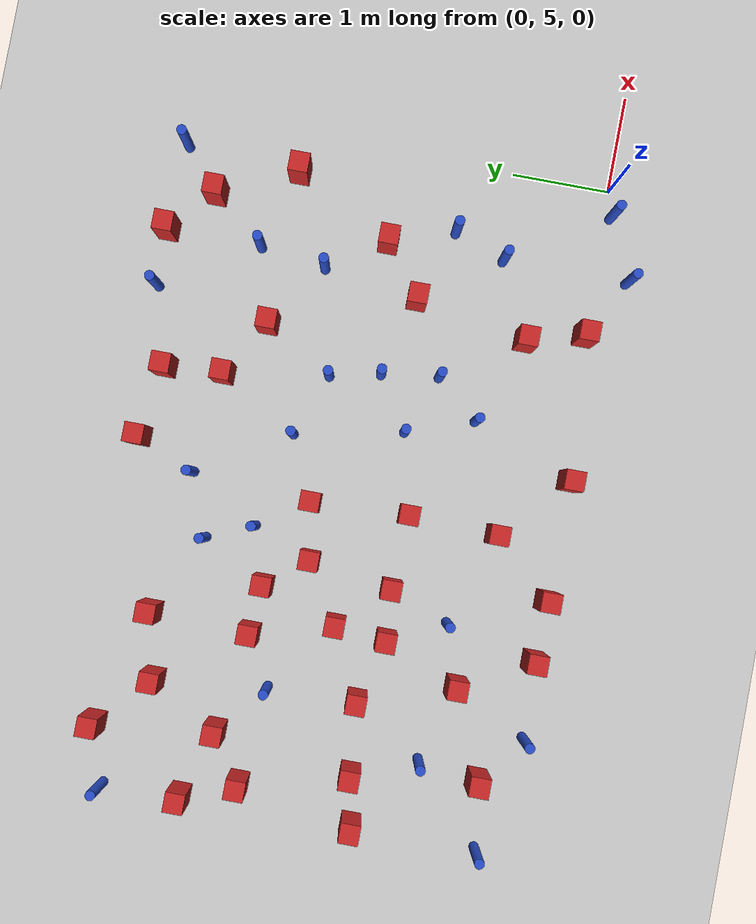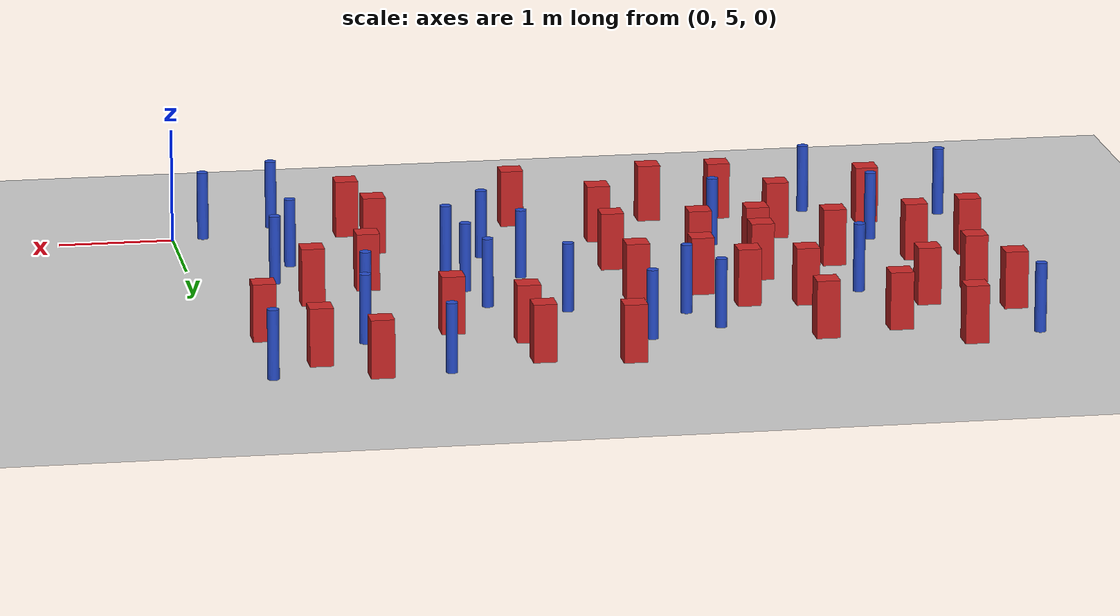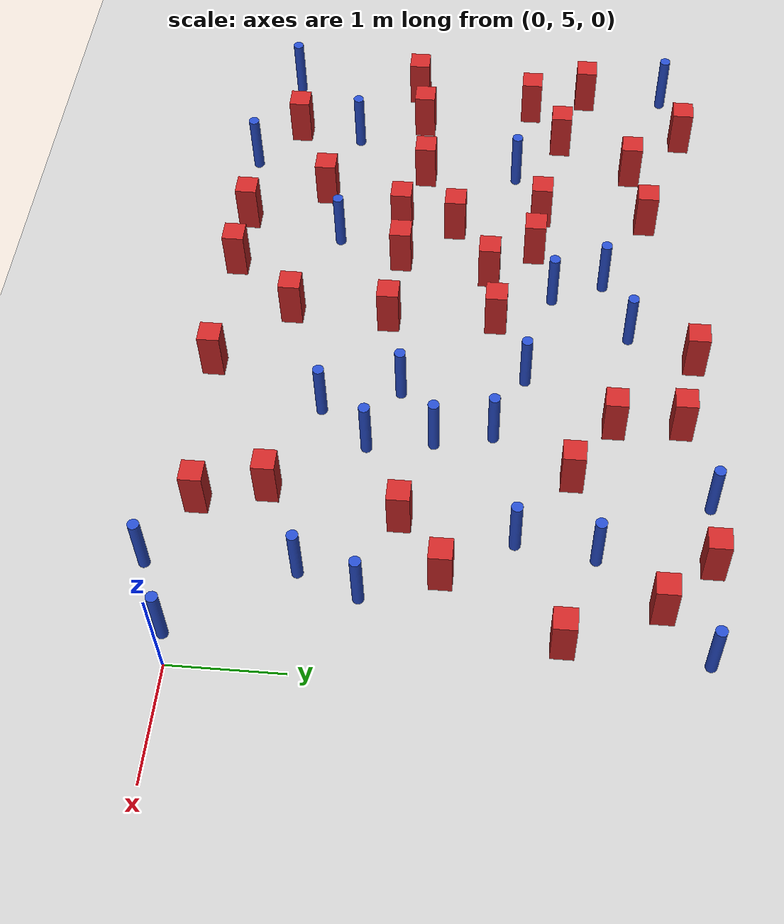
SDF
<sdf version="1.6">
 <world name="default">
  <model name="ground_plane">
   <static>1</static>
   <link name="link">
    <collision name="collision">
     <geometry><plane><normal>0 0 1</normal><size>100 100</size></plane></geometry>
     <surface><friction><ode><mu>100</mu><mu2>50</mu2></ode></friction></surface>
    </collision>
    <visual name="visual">
     <cast_shadows>0</cast_shadows>
     <geometry><plane><normal>0 0 1</normal><size>100 100</size></plane></geometry>
     <material>
      <ambient>1.0 1.0 1.0 1.0</ambient>
      <diffuse>0.8 0.8 0.8 1.0</diffuse>
      <specular>0.01 0.01 0.01 1.000000</specular>
     </material>
    </visual>
   </link>
  </model>
  <model name="square_post_obstacle7">
   <static>true</static>
   <pose>-1.22613645058 9.38384493401 8.22691968438e-08 7.22125133819e-06 -7.54495500217e-07 2.29674213826e-05</pose>
   <link name="link">
    <pose>0 0 0.25 0 -0 0</pose>
    <inertial>
     <mass>100</mass>
     <inertia>
      <ixx>0.166667</ixx>
      <ixy>0</ixy>
      <ixz>0</ixz>
      <iyy>0.166667</iyy>
      <iyz>0</iyz>
      <izz>0.166667</izz>
     </inertia>
    </inertial>
    <collision name="collision"><geometry><box><size>.2 .2 .5</size></box></geometry></collision>
    <visual name="visual">
     <geometry><box><size>.2 .2 .5</size></box></geometry>
     <material>
      <script><name>Gazebo/Red</name><uri>file://media/materials/scripts/gazebo.material</uri></script>
     </material>
    </visual>
   </link>
  </model>
  <model name="square_post_obstacle14">
   <static>true</static>
   <pose>-4.28531719033 7.33323950146 8.22691968438e-08 7.2212513382e-06 -7.54495500217e-07 2.29674213826e-05</pose>
   <link name="link">
    <pose>0 0 0.25 0 -0 0</pose>
    <inertial>
     <mass>100</mass>
     <inertia>
      <ixx>0.166667</ixx>
      <ixy>0</ixy>
      <ixz>0</ixz>
      <iyy>0.166667</iyy>
      <iyz>0</iyz>
      <izz>0.166667</izz>
     </inertia>
    </inertial>
    <collision name="collision"><geometry><box><size>.2 .2 .5</size></box></geometry></collision>
    <visual name="visual">
     <geometry><box><size>.2 .2 .5</size></box></geometry>
     <material>
      <script><name>Gazebo/Red</name><uri>file://media/materials/scripts/gazebo.material</uri></script>
     </material>
    </visual>
   </link>
  </model>
  <model name="square_post_obstacle18">
   <static>true</static>
   <pose>-5.58500520957 6.61513116122 8.22691968438e-08 7.22125133819e-06 -7.54495500217e-07 2.29674213826e-05</pose>
   <link name="link">
    <pose>0 0 0.25 0 -0 0</pose>
    <inertial>
     <mass>100</mass>
     <inertia>
      <ixx>0.166667</ixx>
      <ixy>0</ixy>
      <ixz>0</ixz>
      <iyy>0.166667</iyy>
      <iyz>0</iyz>
      <izz>0.166667</izz>
     </inertia>
    </inertial>
    <collision name="collision"><geometry><box><size>.2 .2 .5</size></box></geometry></collision>
    <visual name="visual">
     <geometry><box><size>.2 .2 .5</size></box></geometry>
     <material>
      <script><name>Gazebo/Red</name><uri>file://media/materials/scripts/gazebo.material</uri></script>
     </material>
    </visual>
   </link>
  </model>
  <model name="pole_obstacle14">
   <static>true</static>
   <pose>-2.29876144259 6.96857675755 2.88873142074e-08 -9.90536689859e-09 4.60219948989e-07 -1.20965994961e-07</pose>
   <link name="link">
    <pose>0 0 0.3 0 -0 0</pose>
    <inertial>
     <mass>1</mass>
     <inertia><ixx>0.145833</ixx><ixy>0</ixy><ixz>0</ixz><iyy>0.145833</iyy><iyz>0</iyz><izz>0.125</izz></inertia>
    </inertial>
    <collision name="collision">
     <geometry><cylinder><radius>0.05</radius><length>.6</length></cylinder></geometry>
    </collision>
    <visual name="visual">
     <geometry><cylinder><radius>0.05</radius><length>.6</length></cylinder></geometry>
     <material>
      <script><name>Gazebo/Blue</name><uri>file://media/materials/scripts/gazebo.material</uri></script>
     </material>
    </visual>
   </link>
  </model>
  <model name="square_post_obstacle28">
   <static>true</static>
   <pose>-0.948833752845 7.14152866537 8.22691968438e-08 7.22125133819e-06 -7.54495500217e-07 2.29674213826e-05</pose>
   <link name="link">
    <pose>0 0 0.25 0 -0 0</pose>
    <inertial>
     <mass>100</mass>
     <inertia>
      <ixx>0.166667</ixx>
      <ixy>0</ixy>
      <ixz>0</ixz>
      <iyy>0.166667</iyy>
      <iyz>0</iyz>
      <izz>0.166667</izz>
     </inertia>
    </inertial>
    <collision name="collision"><geometry><box><size>.2 .2 .5</size></box></geometry></collision>
    <visual name="visual">
     <geometry><box><size>.2 .2 .5</size></box></geometry>
     <material>
      <script><name>Gazebo/Red</name><uri>file://media/materials/scripts/gazebo.material</uri></script>
     </material>
    </visual>
   </link>
  </model>
  <model name="square_post_obstacle33">
   <static>true</static>
   <pose>-3.69137346641 5.52263100463 8.22691968438e-08 7.2212513382e-06 -7.54495500217e-07 2.29674213826e-05</pose>
   <link name="link">
    <pose>0 0 0.25 0 -0 0</pose>
    <inertial>
     <mass>100</mass>
     <inertia>
      <ixx>0.166667</ixx>
      <ixy>0</ixy>
      <ixz>0</ixz>
      <iyy>0.166667</iyy>
      <iyz>0</iyz>
      <izz>0.166667</izz>
     </inertia>
    </inertial>
    <collision name="collision"><geometry><box><size>.2 .2 .5</size></box></geometry></collision>
    <visual name="visual">
     <geometry><box><size>.2 .2 .5</size></box></geometry>
     <material>
      <script><name>Gazebo/Red</name><uri>file://media/materials/scripts/gazebo.material</uri></script>
     </material>
    </visual>
   </link>
  </model>
  <model name="square_post_obstacle37">
   <static>true</static>
   <pose>-5.26482047523 5.65616840763 8.22691968438e-08 7.22125133819e-06 -7.54495500217e-07 2.29674213826e-05</pose>
   <link name="link">
    <pose>0 0 0.25 0 -0 0</pose>
    <inertial>
     <mass>100</mass>
     <inertia>
      <ixx>0.166667</ixx>
      <ixy>0</ixy>
      <ixz>0</ixz>
      <iyy>0.166667</iyy>
      <iyz>0</iyz>
      <izz>0.166667</izz>
     </inertia>
    </inertial>
    <collision name="collision"><geometry><box><size>.2 .2 .5</size></box></geometry></collision>
    <visual name="visual">
     <geometry><box><size>.2 .2 .5</size></box></geometry>
     <material>
      <script><name>Gazebo/Red</name><uri>file://media/materials/scripts/gazebo.material</uri></script>
     </material>
    </visual>
   </link>
  </model>
  <model name="square_post_obstacle38">
   <static>true</static>
   <pose>-1.47556987139 6.74915385455 8.22691968438e-08 7.2212513382e-06 -7.54495500217e-07 2.29674213826e-05</pose>
   <link name="link">
    <pose>0 0 0.25 0 -0 0</pose>
    <inertial>
     <mass>100</mass>
     <inertia>
      <ixx>0.166667</ixx>
      <ixy>0</ixy>
      <ixz>0</ixz>
      <iyy>0.166667</iyy>
      <iyz>0</iyz>
      <izz>0.166667</izz>
     </inertia>
    </inertial>
    <collision name="collision"><geometry><box><size>.2 .2 .5</size></box></geometry></collision>
    <visual name="visual">
     <geometry><box><size>.2 .2 .5</size></box></geometry>
     <material>
      <script><name>Gazebo/Red</name><uri>file://media/materials/scripts/gazebo.material</uri></script>
     </material>
    </visual>
   </link>
  </model>
  <model name="pole_obstacle43">
   <static>true</static>
   <pose>-6.88570336969 8.98308376058 2.88873142074e-08 -9.9053668967e-09 4.60219948993e-07 -1.20965994957e-07</pose>
   <link name="link">
    <pose>0 0 0.3 0 -0 0</pose>
    <inertial>
     <mass>1</mass>
     <inertia><ixx>0.145833</ixx><ixy>0</ixy><ixz>0</ixz><iyy>0.145833</iyy><iyz>0</iyz><izz>0.125</izz></inertia>
    </inertial>
    <collision name="collision">
     <geometry><cylinder><radius>0.05</radius><length>.6</length></cylinder></geometry>
    </collision>
    <visual name="visual">
     <geometry><cylinder><radius>0.05</radius><length>.6</length></cylinder></geometry>
     <material>
      <script><name>Gazebo/Blue</name><uri>file://media/materials/scripts/gazebo.material</uri></script>
     </material>
    </visual>
   </link>
  </model>
  <model name="square_post_obstacle42">
   <static>true</static>
   <pose>-3.70595716237 7.43090711601 8.22691968438e-08 7.2212513382e-06 -7.54495500217e-07 2.29674213826e-05</pose>
   <link name="link">
    <pose>0 0 0.25 0 -0 0</pose>
    <inertial>
     <mass>100</mass>
     <inertia>
      <ixx>0.166667</ixx>
      <ixy>0</ixy>
      <ixz>0</ixz>
      <iyy>0.166667</iyy>
      <iyz>0</iyz>
      <izz>0.166667</izz>
     </inertia>
    </inertial>
    <collision name="collision"><geometry><box><size>.2 .2 .5</size></box></geometry></collision>
    <visual name="visual">
     <geometry><box><size>.2 .2 .5</size></box></geometry>
     <material>
      <script><name>Gazebo/Red</name><uri>file://media/materials/scripts/gazebo.material</uri></script>
     </material>
    </visual>
   </link>
  </model>
  <model name="square_post_obstacle44">
   <static>true</static>
   <pose>-4.87948430223 6.96443715144 8.22691968438e-08 7.2212513382e-06 -7.54495500217e-07 2.29674213826e-05</pose>
   <link name="link">
    <pose>0 0 0.25 0 -0 0</pose>
    <inertial>
     <mass>100</mass>
     <inertia>
      <ixx>0.166667</ixx>
      <ixy>0</ixy>
      <ixz>0</ixz>
      <iyy>0.166667</iyy>
      <iyz>0</iyz>
      <izz>0.166667</izz>
     </inertia>
    </inertial>
    <collision name="collision"><geometry><box><size>.2 .2 .5</size></box></geometry></collision>
    <visual name="visual">
     <geometry><box><size>.2 .2 .5</size></box></geometry>
     <material>
      <script><name>Gazebo/Red</name><uri>file://media/materials/scripts/gazebo.material</uri></script>
     </material>
    </visual>
   </link>
  </model>
  <model name="pole_obstacle52">
   <static>true</static>
   <pose>-1.32729031812 7.73289662675 2.88873142074e-08 -9.90536689852e-09 4.60219948989e-07 -1.2096599496e-07</pose>
   <link name="link">
    <pose>0 0 0.3 0 -0 0</pose>
    <inertial>
     <mass>1</mass>
     <inertia><ixx>0.145833</ixx><ixy>0</ixy><ixz>0</ixz><iyy>0.145833</iyy><iyz>0</iyz><izz>0.125</izz></inertia>
    </inertial>
    <collision name="collision">
     <geometry><cylinder><radius>0.05</radius><length>.6</length></cylinder></geometry>
    </collision>
    <visual name="visual">
     <geometry><cylinder><radius>0.05</radius><length>.6</length></cylinder></geometry>
     <material>
      <script><name>Gazebo/Blue</name><uri>file://media/materials/scripts/gazebo.material</uri></script>
     </material>
    </visual>
   </link>
  </model>
  <model name="pole_obstacle62">
   <static>true</static>
   <pose>-2.41062596657 7.48643490611 2.88873142074e-08 -9.90536689859e-09 4.60219948989e-07 -1.20965994961e-07</pose>
   <link name="link">
    <pose>0 0 0.3 0 -0 0</pose>
    <inertial>
     <mass>1</mass>
     <inertia><ixx>0.145833</ixx><ixy>0</ixy><ixz>0</ixz><iyy>0.145833</iyy><iyz>0</iyz><izz>0.125</izz></inertia>
    </inertial>
    <collision name="collision">
     <geometry><cylinder><radius>0.05</radius><length>.6</length></cylinder></geometry>
    </collision>
    <visual name="visual">
     <geometry><cylinder><radius>0.05</radius><length>.6</length></cylinder></geometry>
     <material>
      <script><name>Gazebo/Blue</name><uri>file://media/materials/scripts/gazebo.material</uri></script>
     </material>
    </visual>
   </link>
  </model>
  <model name="pole_obstacle66">
   <static>true</static>
   <pose>-0.915262878903 5.9514463079 2.88873142074e-08 -9.90536689661e-09 4.60219948993e-07 -1.20965994957e-07</pose>
   <link name="link">
    <pose>0 0 0.3 0 -0 0</pose>
    <inertial>
     <mass>1</mass>
     <inertia><ixx>0.145833</ixx><ixy>0</ixy><ixz>0</ixz><iyy>0.145833</iyy><iyz>0</iyz><izz>0.125</izz></inertia>
    </inertial>
    <collision name="collision">
     <geometry><cylinder><radius>0.05</radius><length>.6</length></cylinder></geometry>
    </collision>
    <visual name="visual">
     <geometry><cylinder><radius>0.05</radius><length>.6</length></cylinder></geometry>
     <material>
      <script><name>Gazebo/Blue</name><uri>file://media/materials/scripts/gazebo.material</uri></script>
     </material>
    </visual>
   </link>
  </model>
  <model name="square_post_obstacle74">
   <static>true</static>
   <pose>-1.53128782521 5.00618645903 8.22691968438e-08 7.2212513382e-06 -7.54495500217e-07 2.29674213826e-05</pose>
   <link name="link">
    <pose>0 0 0.25 0 -0 0</pose>
    <inertial>
     <mass>100</mass>
     <inertia>
      <ixx>0.166667</ixx>
      <ixy>0</ixy>
      <ixz>0</ixz>
      <iyy>0.166667</iyy>
      <iyz>0</iyz>
      <izz>0.166667</izz>
     </inertia>
    </inertial>
    <collision name="collision"><geometry><box><size>.2 .2 .5</size></box></geometry></collision>
    <visual name="visual">
     <geometry><box><size>.2 .2 .5</size></box></geometry>
     <material>
      <script><name>Gazebo/Red</name><uri>file://media/materials/scripts/gazebo.material</uri></script>
     </material>
    </visual>
   </link>
  </model>
  <model name="pole_obstacle70">
   <static>true</static>
   <pose>-3.62546005484 8.66978898283 2.88873142074e-08 -9.90536692318e-09 4.6021994893e-07 -1.20965994988e-07</pose>
   <link name="link">
    <pose>0 0 0.3 0 -0 0</pose>
    <inertial>
     <mass>1</mass>
     <inertia><ixx>0.145833</ixx><ixy>0</ixy><ixz>0</ixz><iyy>0.145833</iyy><iyz>0</iyz><izz>0.125</izz></inertia>
    </inertial>
    <collision name="collision">
     <geometry><cylinder><radius>0.05</radius><length>.6</length></cylinder></geometry>
    </collision>
    <visual name="visual">
     <geometry><cylinder><radius>0.05</radius><length>.6</length></cylinder></geometry>
     <material>
      <script><name>Gazebo/Blue</name><uri>file://media/materials/scripts/gazebo.material</uri></script>
     </material>
    </visual>
   </link>
  </model>
  <model name="pole_obstacle75">
   <static>true</static>
   <pose>-2.83647481616 6.62728271968 2.88873142074e-08 -9.90536689859e-09 4.60219948989e-07 -1.20965994961e-07</pose>
   <link name="link">
    <pose>0 0 0.3 0 -0 0</pose>
    <inertial>
     <mass>1</mass>
     <inertia><ixx>0.145833</ixx><ixy>0</ixy><ixz>0</ixz><iyy>0.145833</iyy><iyz>0</iyz><izz>0.125</izz></inertia>
    </inertial>
    <collision name="collision">
     <geometry><cylinder><radius>0.05</radius><length>.6</length></cylinder></geometry>
    </collision>
    <visual name="visual">
     <geometry><cylinder><radius>0.05</radius><length>.6</length></cylinder></geometry>
     <material>
      <script><name>Gazebo/Blue</name><uri>file://media/materials/scripts/gazebo.material</uri></script>
     </material>
    </visual>
   </link>
  </model>
  <model name="square_post_obstacle78">
   <static>true</static>
   <pose>-4.25171875702 4.90870823354 8.22691968438e-08 7.2212513382e-06 -7.54495500217e-07 2.29674213826e-05</pose>
   <link name="link">
    <pose>0 0 0.25 0 -0 0</pose>
    <inertial>
     <mass>100</mass>
     <inertia>
      <ixx>0.166667</ixx>
      <ixy>0</ixy>
      <ixz>0</ixz>
      <iyy>0.166667</iyy>
      <iyz>0</iyz>
      <izz>0.166667</izz>
     </inertia>
    </inertial>
    <collision name="collision"><geometry><box><size>.2 .2 .5</size></box></geometry></collision>
    <visual name="visual">
     <geometry><box><size>.2 .2 .5</size></box></geometry>
     <material>
      <script><name>Gazebo/Red</name><uri>file://media/materials/scripts/gazebo.material</uri></script>
     </material>
    </visual>
   </link>
  </model>
  <model name="square_post_obstacle79">
   <static>true</static>
   <pose>-6.14588084051 5.27867057476 8.22691968438e-08 7.22125133819e-06 -7.54495500217e-07 2.29674213826e-05</pose>
   <link name="link">
    <pose>0 0 0.25 0 -0 0</pose>
    <inertial>
     <mass>100</mass>
     <inertia>
      <ixx>0.166667</ixx>
      <ixy>0</ixy>
      <ixz>0</ixz>
      <iyy>0.166667</iyy>
      <iyz>0</iyz>
      <izz>0.166667</izz>
     </inertia>
    </inertial>
    <collision name="collision"><geometry><box><size>.2 .2 .5</size></box></geometry></collision>
    <visual name="visual">
     <geometry><box><size>.2 .2 .5</size></box></geometry>
     <material>
      <script><name>Gazebo/Red</name><uri>file://media/materials/scripts/gazebo.material</uri></script>
     </material>
    </visual>
   </link>
  </model>
  <model name="square_post_obstacle80">
   <static>true</static>
   <pose>-1.6926013516 5.59172345195 8.22691968438e-08 7.2212513382e-06 -7.54495500217e-07 2.29674213826e-05</pose>
   <link name="link">
    <pose>0 0 0.25 0 -0 0</pose>
    <inertial>
     <mass>100</mass>
     <inertia>
      <ixx>0.166667</ixx>
      <ixy>0</ixy>
      <ixz>0</ixz>
      <iyy>0.166667</iyy>
      <iyz>0</iyz>
      <izz>0.166667</izz>
     </inertia>
    </inertial>
    <collision name="collision"><geometry><box><size>.2 .2 .5</size></box></geometry></collision>
    <visual name="visual">
     <geometry><box><size>.2 .2 .5</size></box></geometry>
     <material>
      <script><name>Gazebo/Red</name><uri>file://media/materials/scripts/gazebo.material</uri></script>
     </material>
    </visual>
   </link>
  </model>
  <model name="square_post_obstacle81">
   <static>true</static>
   <pose>-4.61421129042 7.75122520981 8.22691968438e-08 7.2212513382e-06 -7.54495500217e-07 2.29674213826e-05</pose>
   <link name="link">
    <pose>0 0 0.25 0 -0 0</pose>
    <inertial>
     <mass>100</mass>
     <inertia>
      <ixx>0.166667</ixx>
      <ixy>0</ixy>
      <ixz>0</ixz>
      <iyy>0.166667</iyy>
      <iyz>0</iyz>
      <izz>0.166667</izz>
     </inertia>
    </inertial>
    <collision name="collision"><geometry><box><size>.2 .2 .5</size></box></geometry></collision>
    <visual name="visual">
     <geometry><box><size>.2 .2 .5</size></box></geometry>
     <material>
      <script><name>Gazebo/Red</name><uri>file://media/materials/scripts/gazebo.material</uri></script>
     </material>
    </visual>
   </link>
  </model>
  <model name="pole_obstacle91">
   <static>true</static>
   <pose>-4.04873072896 7.94515494292 2.88873142074e-08 -9.90536691069e-09 4.6021994896e-07 -1.20965994979e-07</pose>
   <link name="link">
    <pose>0 0 0.3 0 -0 0</pose>
    <inertial>
     <mass>1</mass>
     <inertia><ixx>0.145833</ixx><ixy>0</ixy><ixz>0</ixz><iyy>0.145833</iyy><iyz>0</iyz><izz>0.125</izz></inertia>
    </inertial>
    <collision name="collision">
     <geometry><cylinder><radius>0.05</radius><length>.6</length></cylinder></geometry>
    </collision>
    <visual name="visual">
     <geometry><cylinder><radius>0.05</radius><length>.6</length></cylinder></geometry>
     <material>
      <script><name>Gazebo/Blue</name><uri>file://media/materials/scripts/gazebo.material</uri></script>
     </material>
    </visual>
   </link>
  </model>
  <model name="square_post_obstacle88">
   <static>true</static>
   <pose>-5.74382862756 8.66205579958 8.22691968438e-08 7.22125133819e-06 -7.54495500217e-07 2.29674213826e-05</pose>
   <link name="link">
    <pose>0 0 0.25 0 -0 0</pose>
    <inertial>
     <mass>100</mass>
     <inertia>
      <ixx>0.166667</ixx>
      <ixy>0</ixy>
      <ixz>0</ixz>
      <iyy>0.166667</iyy>
      <iyz>0</iyz>
      <izz>0.166667</izz>
     </inertia>
    </inertial>
    <collision name="collision"><geometry><box><size>.2 .2 .5</size></box></geometry></collision>
    <visual name="visual">
     <geometry><box><size>.2 .2 .5</size></box></geometry>
     <material>
      <script><name>Gazebo/Red</name><uri>file://media/materials/scripts/gazebo.material</uri></script>
     </material>
    </visual>
   </link>
  </model>
  <model name="pole_obstacle101">
   <static>true</static>
   <pose>-4.25760830377 8.41995692485 2.88873142074e-08 -9.9053668967e-09 4.60219948993e-07 -1.20965994957e-07</pose>
   <link name="link">
    <pose>0 0 0.3 0 -0 0</pose>
    <inertial>
     <mass>1</mass>
     <inertia><ixx>0.145833</ixx><ixy>0</ixy><ixz>0</ixz><iyy>0.145833</iyy><iyz>0</iyz><izz>0.125</izz></inertia>
    </inertial>
    <collision name="collision">
     <geometry><cylinder><radius>0.05</radius><length>.6</length></cylinder></geometry>
    </collision>
    <visual name="visual">
     <geometry><cylinder><radius>0.05</radius><length>.6</length></cylinder></geometry>
     <material>
      <script><name>Gazebo/Blue</name><uri>file://media/materials/scripts/gazebo.material</uri></script>
     </material>
    </visual>
   </link>
  </model>
  <model name="square_post_obstacle91">
   <static>true</static>
   <pose>-3.36120687217 9.26845364239 8.22691968438e-08 7.2212513382e-06 -7.54495500217e-07 2.29674213826e-05</pose>
   <link name="link">
    <pose>0 0 0.25 0 -0 0</pose>
    <inertial>
     <mass>100</mass>
     <inertia>
      <ixx>0.166667</ixx>
      <ixy>0</ixy>
      <ixz>0</ixz>
      <iyy>0.166667</iyy>
      <iyz>0</iyz>
      <izz>0.166667</izz>
     </inertia>
    </inertial>
    <collision name="collision"><geometry><box><size>.2 .2 .5</size></box></geometry></collision>
    <visual name="visual">
     <geometry><box><size>.2 .2 .5</size></box></geometry>
     <material>
      <script><name>Gazebo/Red</name><uri>file://media/materials/scripts/gazebo.material</uri></script>
     </material>
    </visual>
   </link>
  </model>
  <model name="pole_obstacle105">
   <static>true</static>
   <pose>-3.06179852335 7.73640630714 2.88873142074e-08 -9.90536689859e-09 4.60219948989e-07 -1.20965994961e-07</pose>
   <link name="link">
    <pose>0 0 0.3 0 -0 0</pose>
    <inertial>
     <mass>1</mass>
     <inertia><ixx>0.145833</ixx><ixy>0</ixy><ixz>0</ixz><iyy>0.145833</iyy><iyz>0</iyz><izz>0.125</izz></inertia>
    </inertial>
    <collision name="collision">
     <geometry><cylinder><radius>0.05</radius><length>.6</length></cylinder></geometry>
    </collision>
    <visual name="visual">
     <geometry><cylinder><radius>0.05</radius><length>.6</length></cylinder></geometry>
     <material>
      <script><name>Gazebo/Blue</name><uri>file://media/materials/scripts/gazebo.material</uri></script>
     </material>
    </visual>
   </link>
  </model>
  <model name="square_post_obstacle94">
   <static>true</static>
   <pose>-4.87295712702 4.93101206737 8.22691968438e-08 7.2212513382e-06 -7.54495500217e-07 2.29674213826e-05</pose>
   <link name="link">
    <pose>0 0 0.25 0 -0 0</pose>
    <inertial>
     <mass>100</mass>
     <inertia>
      <ixx>0.166667</ixx>
      <ixy>0</ixy>
      <ixz>0</ixz>
      <iyy>0.166667</iyy>
      <iyz>0</iyz>
      <izz>0.166667</izz>
     </inertia>
    </inertial>
    <collision name="collision"><geometry><box><size>.2 .2 .5</size></box></geometry></collision>
    <visual name="visual">
     <geometry><box><size>.2 .2 .5</size></box></geometry>
     <material>
      <script><name>Gazebo/Red</name><uri>file://media/materials/scripts/gazebo.material</uri></script>
     </material>
    </visual>
   </link>
  </model>
  <model name="pole_obstacle110">
   <static>true</static>
   <pose>-1.22897921114 8.4169871043 2.88873142074e-08 -9.90536690474e-09 4.60219948974e-07 -1.2096599497e-07</pose>
   <link name="link">
    <pose>0 0 0.3 0 -0 0</pose>
    <inertial>
     <mass>1</mass>
     <inertia><ixx>0.145833</ixx><ixy>0</ixy><ixz>0</ixz><iyy>0.145833</iyy><iyz>0</iyz><izz>0.125</izz></inertia>
    </inertial>
    <collision name="collision">
     <geometry><cylinder><radius>0.05</radius><length>.6</length></cylinder></geometry>
    </collision>
    <visual name="visual">
     <geometry><cylinder><radius>0.05</radius><length>.6</length></cylinder></geometry>
     <material>
      <script><name>Gazebo/Blue</name><uri>file://media/materials/scripts/gazebo.material</uri></script>
     </material>
    </visual>
   </link>
  </model>
  <model name="pole_obstacle113">
   <static>true</static>
   <pose>-5.66300407917 4.88617456569 2.88873142074e-08 -9.90536690842e-09 4.60219948965e-07 -1.20965994976e-07</pose>
   <link name="link">
    <pose>0 0 0.3 0 -0 0</pose>
    <inertial>
     <mass>1</mass>
     <inertia><ixx>0.145833</ixx><ixy>0</ixy><ixz>0</ixz><iyy>0.145833</iyy><iyz>0</iyz><izz>0.125</izz></inertia>
    </inertial>
    <collision name="collision">
     <geometry><cylinder><radius>0.05</radius><length>.6</length></cylinder></geometry>
    </collision>
    <visual name="visual">
     <geometry><cylinder><radius>0.05</radius><length>.6</length></cylinder></geometry>
     <material>
      <script><name>Gazebo/Blue</name><uri>file://media/materials/scripts/gazebo.material</uri></script>
     </material>
    </visual>
   </link>
  </model>
  <model name="square_post_obstacle105">
   <static>true</static>
   <pose>-3.65803280849 6.43457797557 8.22691968438e-08 7.2212513382e-06 -7.54495500217e-07 2.29674213826e-05</pose>
   <link name="link">
    <pose>0 0 0.25 0 -0 0</pose>
    <inertial>
     <mass>100</mass>
     <inertia>
      <ixx>0.166667</ixx>
      <ixy>0</ixy>
      <ixz>0</ixz>
      <iyy>0.166667</iyy>
      <iyz>0</iyz>
      <izz>0.166667</izz>
     </inertia>
    </inertial>
    <collision name="collision"><geometry><box><size>.2 .2 .5</size></box></geometry></collision>
    <visual name="visual">
     <geometry><box><size>.2 .2 .5</size></box></geometry>
     <material>
      <script><name>Gazebo/Red</name><uri>file://media/materials/scripts/gazebo.material</uri></script>
     </material>
    </visual>
   </link>
  </model>
  <model name="square_post_obstacle109">
   <static>true</static>
   <pose>-1.99635640504 8.19155130863 8.22691968438e-08 7.22125133819e-06 -7.54495500217e-07 2.29674213826e-05</pose>
   <link name="link">
    <pose>0 0 0.25 0 -0 0</pose>
    <inertial>
     <mass>100</mass>
     <inertia>
      <ixx>0.166667</ixx>
      <ixy>0</ixy>
      <ixz>0</ixz>
      <iyy>0.166667</iyy>
      <iyz>0</iyz>
      <izz>0.166667</izz>
     </inertia>
    </inertial>
    <collision name="collision"><geometry><box><size>.2 .2 .5</size></box></geometry></collision>
    <visual name="visual">
     <geometry><box><size>.2 .2 .5</size></box></geometry>
     <material>
      <script><name>Gazebo/Red</name><uri>file://media/materials/scripts/gazebo.material</uri></script>
     </material>
    </visual>
   </link>
  </model>
  <model name="pole_obstacle120">
   <static>true</static>
   <pose>-2.21814883015 6.38028919866 2.88873142074e-08 -9.90536689859e-09 4.60219948989e-07 -1.20965994961e-07</pose>
   <link name="link">
    <pose>0 0 0.3 0 -0 0</pose>
    <inertial>
     <mass>1</mass>
     <inertia><ixx>0.145833</ixx><ixy>0</ixy><ixz>0</ixz><iyy>0.145833</iyy><iyz>0</iyz><izz>0.125</izz></inertia>
    </inertial>
    <collision name="collision">
     <geometry><cylinder><radius>0.05</radius><length>.6</length></cylinder></geometry>
    </collision>
    <visual name="visual">
     <geometry><cylinder><radius>0.05</radius><length>.6</length></cylinder></geometry>
     <material>
      <script><name>Gazebo/Blue</name><uri>file://media/materials/scripts/gazebo.material</uri></script>
     </material>
    </visual>
   </link>
  </model>
  <model name="square_post_obstacle112">
   <static>true</static>
   <pose>-5.08086302646 8.81797150155 8.22691968438e-08 7.22125133819e-06 -7.54495500217e-07 2.29674213826e-05</pose>
   <link name="link">
    <pose>0 0 0.25 0 -0 0</pose>
    <inertial>
     <mass>100</mass>
     <inertia>
      <ixx>0.166667</ixx>
      <ixy>0</ixy>
      <ixz>0</ixz>
      <iyy>0.166667</iyy>
      <iyz>0</iyz>
      <izz>0.166667</izz>
     </inertia>
    </inertial>
    <collision name="collision"><geometry><box><size>.2 .2 .5</size></box></geometry></collision>
    <visual name="visual">
     <geometry><box><size>.2 .2 .5</size></box></geometry>
     <material>
      <script><name>Gazebo/Red</name><uri>file://media/materials/scripts/gazebo.material</uri></script>
     </material>
    </visual>
   </link>
  </model>
  <model name="pole_obstacle134">
   <static>true</static>
   <pose>-2.59572824076 5.93703128332 2.88873142074e-08 -9.90536689859e-09 4.60219948989e-07 -1.20965994961e-07</pose>
   <link name="link">
    <pose>0 0 0.3 0 -0 0</pose>
    <inertial>
     <mass>1</mass>
     <inertia><ixx>0.145833</ixx><ixy>0</ixy><ixz>0</ixz><iyy>0.145833</iyy><iyz>0</iyz><izz>0.125</izz></inertia>
    </inertial>
    <collision name="collision">
     <geometry><cylinder><radius>0.05</radius><length>.6</length></cylinder></geometry>
    </collision>
    <visual name="visual">
     <geometry><cylinder><radius>0.05</radius><length>.6</length></cylinder></geometry>
     <material>
      <script><name>Gazebo/Blue</name><uri>file://media/materials/scripts/gazebo.material</uri></script>
     </material>
    </visual>
   </link>
  </model>
  <model name="square_post_obstacle116">
   <static>true</static>
   <pose>-0.401625841867 8.16084311002 8.22691968438e-08 7.22125133819e-06 -7.54495500217e-07 2.29674213826e-05</pose>
   <link name="link">
    <pose>0 0 0.25 0 -0 0</pose>
    <inertial>
     <mass>100</mass>
     <inertia>
      <ixx>0.166667</ixx>
      <ixy>0</ixy>
      <ixz>0</ixz>
      <iyy>0.166667</iyy>
      <iyz>0</iyz>
      <izz>0.166667</izz>
     </inertia>
    </inertial>
    <collision name="collision"><geometry><box><size>.2 .2 .5</size></box></geometry></collision>
    <visual name="visual">
     <geometry><box><size>.2 .2 .5</size></box></geometry>
     <material>
      <script><name>Gazebo/Red</name><uri>file://media/materials/scripts/gazebo.material</uri></script>
     </material>
    </visual>
   </link>
  </model>
  <model name="pole_obstacle138">
   <static>true</static>
   <pose>-1.81371086213 9.38525636269 2.88873142074e-08 -9.90536690474e-09 4.60219948974e-07 -1.2096599497e-07</pose>
   <link name="link">
    <pose>0 0 0.3 0 -0 0</pose>
    <inertial>
     <mass>1</mass>
     <inertia><ixx>0.145833</ixx><ixy>0</ixy><ixz>0</ixz><iyy>0.145833</iyy><iyz>0</iyz><izz>0.125</izz></inertia>
    </inertial>
    <collision name="collision">
     <geometry><cylinder><radius>0.05</radius><length>.6</length></cylinder></geometry>
    </collision>
    <visual name="visual">
     <geometry><cylinder><radius>0.05</radius><length>.6</length></cylinder></geometry>
     <material>
      <script><name>Gazebo/Blue</name><uri>file://media/materials/scripts/gazebo.material</uri></script>
     </material>
    </visual>
   </link>
  </model>
  <model name="square_post_obstacle125">
   <static>true</static>
   <pose>-2.58251400744 8.54363907187 8.22691968438e-08 7.22125133819e-06 -7.54495500217e-07 2.29674213826e-05</pose>
   <link name="link">
    <pose>0 0 0.25 0 -0 0</pose>
    <inertial>
     <mass>100</mass>
     <inertia>
      <ixx>0.166667</ixx>
      <ixy>0</ixy>
      <ixz>0</ixz>
      <iyy>0.166667</iyy>
      <iyz>0</iyz>
      <izz>0.166667</izz>
     </inertia>
    </inertial>
    <collision name="collision"><geometry><box><size>.2 .2 .5</size></box></geometry></collision>
    <visual name="visual">
     <geometry><box><size>.2 .2 .5</size></box></geometry>
     <material>
      <script><name>Gazebo/Red</name><uri>file://media/materials/scripts/gazebo.material</uri></script>
     </material>
    </visual>
   </link>
  </model>
  <model name="square_post_obstacle126">
   <static>true</static>
   <pose>-6.84053708979 8.18629711681 8.22691968438e-08 7.22125133819e-06 -7.54495500217e-07 2.29674213826e-05</pose>
   <link name="link">
    <pose>0 0 0.25 0 -0 0</pose>
    <inertial>
     <mass>100</mass>
     <inertia>
      <ixx>0.166667</ixx>
      <ixy>0</ixy>
      <ixz>0</ixz>
      <iyy>0.166667</iyy>
      <iyz>0</iyz>
      <izz>0.166667</izz>
     </inertia>
    </inertial>
    <collision name="collision"><geometry><box><size>.2 .2 .5</size></box></geometry></collision>
    <visual name="visual">
     <geometry><box><size>.2 .2 .5</size></box></geometry>
     <material>
      <script><name>Gazebo/Red</name><uri>file://media/materials/scripts/gazebo.material</uri></script>
     </material>
    </visual>
   </link>
  </model>
  <model name="square_post_obstacle139">
   <static>true</static>
   <pose>-5.11305532077 7.79508929462 8.22691968438e-08 7.2212513382e-06 -7.54495500217e-07 2.29674213826e-05</pose>
   <link name="link">
    <pose>0 0 0.25 0 -0 0</pose>
    <inertial>
     <mass>100</mass>
     <inertia>
      <ixx>0.166667</ixx>
      <ixy>0</ixy>
      <ixz>0</ixz>
      <iyy>0.166667</iyy>
      <iyz>0</iyz>
      <izz>0.166667</izz>
     </inertia>
    </inertial>
    <collision name="collision"><geometry><box><size>.2 .2 .5</size></box></geometry></collision>
    <visual name="visual">
     <geometry><box><size>.2 .2 .5</size></box></geometry>
     <material>
      <script><name>Gazebo/Red</name><uri>file://media/materials/scripts/gazebo.material</uri></script>
     </material>
    </visual>
   </link>
  </model>
  <model name="pole_obstacle152">
   <static>true</static>
   <pose>-0.274061539564 4.94331912583 2.88873142074e-08 -9.90536689618e-09 4.60219948994e-07 -1.20965994956e-07</pose>
   <link name="link">
    <pose>0 0 0.3 0 -0 0</pose>
    <inertial>
     <mass>1</mass>
     <inertia><ixx>0.145833</ixx><ixy>0</ixy><ixz>0</ixz><iyy>0.145833</iyy><iyz>0</iyz><izz>0.125</izz></inertia>
    </inertial>
    <collision name="collision">
     <geometry><cylinder><radius>0.05</radius><length>.6</length></cylinder></geometry>
    </collision>
    <visual name="visual">
     <geometry><cylinder><radius>0.05</radius><length>.6</length></cylinder></geometry>
     <material>
      <script><name>Gazebo/Blue</name><uri>file://media/materials/scripts/gazebo.material</uri></script>
     </material>
    </visual>
   </link>
  </model>
  <model name="square_post_obstacle146">
   <static>true</static>
   <pose>-6.81907401774 6.44800648294 8.22691968438e-08 7.2212513382e-06 -7.54495500217e-07 2.29674213826e-05</pose>
   <link name="link">
    <pose>0 0 0.25 0 -0 0</pose>
    <inertial>
     <mass>100</mass>
     <inertia>
      <ixx>0.166667</ixx>
      <ixy>0</ixy>
      <ixz>0</ixz>
      <iyy>0.166667</iyy>
      <iyz>0</iyz>
      <izz>0.166667</izz>
     </inertia>
    </inertial>
    <collision name="collision"><geometry><box><size>.2 .2 .5</size></box></geometry></collision>
    <visual name="visual">
     <geometry><box><size>.2 .2 .5</size></box></geometry>
     <material>
      <script><name>Gazebo/Red</name><uri>file://media/materials/scripts/gazebo.material</uri></script>
     </material>
    </visual>
   </link>
  </model>
  <model name="square_post_obstacle162">
   <static>true</static>
   <pose>-6.32196877314 6.54531737398 8.22691968438e-08 7.22125133819e-06 -7.54495500217e-07 2.29674213826e-05</pose>
   <link name="link">
    <pose>0 0 0.25 0 -0 0</pose>
    <inertial>
     <mass>100</mass>
     <inertia>
      <ixx>0.166667</ixx>
      <ixy>0</ixy>
      <ixz>0</ixz>
      <iyy>0.166667</iyy>
      <iyz>0</iyz>
      <izz>0.166667</izz>
     </inertia>
    </inertial>
    <collision name="collision"><geometry><box><size>.2 .2 .5</size></box></geometry></collision>
    <visual name="visual">
     <geometry><box><size>.2 .2 .5</size></box></geometry>
     <material>
      <script><name>Gazebo/Red</name><uri>file://media/materials/scripts/gazebo.material</uri></script>
     </material>
    </visual>
   </link>
  </model>
  <model name="pole_obstacle172">
   <static>true</static>
   <pose>-4.66137164831 5.85325348947 2.88873142074e-08 -9.90536690842e-09 4.60219948965e-07 -1.20965994976e-07</pose>
   <link name="link">
    <pose>0 0 0.3 0 -0 0</pose>
    <inertial>
     <mass>1</mass>
     <inertia><ixx>0.145833</ixx><ixy>0</ixy><ixz>0</ixz><iyy>0.145833</iyy><iyz>0</iyz><izz>0.125</izz></inertia>
    </inertial>
    <collision name="collision">
     <geometry><cylinder><radius>0.05</radius><length>.6</length></cylinder></geometry>
    </collision>
    <visual name="visual">
     <geometry><cylinder><radius>0.05</radius><length>.6</length></cylinder></geometry>
     <material>
      <script><name>Gazebo/Blue</name><uri>file://media/materials/scripts/gazebo.material</uri></script>
     </material>
    </visual>
   </link>
  </model>
  <model name="pole_obstacle180">
   <static>true</static>
   <pose>-0.912426500691 4.66432625615 2.88873142074e-08 -9.90536689661e-09 4.60219948993e-07 -1.20965994957e-07</pose>
   <link name="link">
    <pose>0 0 0.3 0 -0 0</pose>
    <inertial>
     <mass>1</mass>
     <inertia><ixx>0.145833</ixx><ixy>0</ixy><ixz>0</ixz><iyy>0.145833</iyy><iyz>0</iyz><izz>0.125</izz></inertia>
    </inertial>
    <collision name="collision">
     <geometry><cylinder><radius>0.05</radius><length>.6</length></cylinder></geometry>
    </collision>
    <visual name="visual">
     <geometry><cylinder><radius>0.05</radius><length>.6</length></cylinder></geometry>
     <material>
      <script><name>Gazebo/Blue</name><uri>file://media/materials/scripts/gazebo.material</uri></script>
     </material>
    </visual>
   </link>
  </model>
  <model name="square_post_obstacle177">
   <static>true</static>
   <pose>-6.28006615346 9.16887096984 8.22691968438e-08 7.22125133819e-06 -7.54495500217e-07 2.29674213826e-05</pose>
   <link name="link">
    <pose>0 0 0.25 0 -0 0</pose>
    <inertial>
     <mass>100</mass>
     <inertia>
      <ixx>0.166667</ixx>
      <ixy>0</ixy>
      <ixz>0</ixz>
      <iyy>0.166667</iyy>
      <iyz>0</iyz>
      <izz>0.166667</izz>
     </inertia>
    </inertial>
    <collision name="collision"><geometry><box><size>.2 .2 .5</size></box></geometry></collision>
    <visual name="visual">
     <geometry><box><size>.2 .2 .5</size></box></geometry>
     <material>
      <script><name>Gazebo/Red</name><uri>file://media/materials/scripts/gazebo.material</uri></script>
     </material>
    </visual>
   </link>
  </model>
  <model name="square_post_obstacle180">
   <static>true</static>
   <pose>-4.42133946837 6.4765052068 8.22691968438e-08 7.22125133819e-06 -7.54495500217e-07 2.29674213826e-05</pose>
   <link name="link">
    <pose>0 0 0.25 0 -0 0</pose>
    <inertial>
     <mass>100</mass>
     <inertia>
      <ixx>0.166667</ixx>
      <ixy>0</ixy>
      <ixz>0</ixz>
      <iyy>0.166667</iyy>
      <iyz>0</iyz>
      <izz>0.166667</izz>
     </inertia>
    </inertial>
    <collision name="collision"><geometry><box><size>.2 .2 .5</size></box></geometry></collision>
    <visual name="visual">
     <geometry><box><size>.2 .2 .5</size></box></geometry>
     <material>
      <script><name>Gazebo/Red</name><uri>file://media/materials/scripts/gazebo.material</uri></script>
     </material>
    </visual>
   </link>
  </model>
  <model name="square_post_obstacle192">
   <static>true</static>
   <pose>-4.93480395636 6.43541038001 8.22691968438e-08 7.2212513382e-06 -7.54495500217e-07 2.29674213826e-05</pose>
   <link name="link">
    <pose>0 0 0.25 0 -0 0</pose>
    <inertial>
     <mass>100</mass>
     <inertia>
      <ixx>0.166667</ixx>
      <ixy>0</ixy>
      <ixz>0</ixz>
      <iyy>0.166667</iyy>
      <iyz>0</iyz>
      <izz>0.166667</izz>
     </inertia>
    </inertial>
    <collision name="collision"><geometry><box><size>.2 .2 .5</size></box></geometry></collision>
    <visual name="visual">
     <geometry><box><size>.2 .2 .5</size></box></geometry>
     <material>
      <script><name>Gazebo/Red</name><uri>file://media/materials/scripts/gazebo.material</uri></script>
     </material>
    </visual>
   </link>
  </model>
  <model name="square_post_obstacle193">
   <static>true</static>
   <pose>-6.61449311306 7.63047046359 8.22691968438e-08 7.2212513382e-06 -7.54495500217e-07 2.29674213826e-05</pose>
   <link name="link">
    <pose>0 0 0.25 0 -0 0</pose>
    <inertial>
     <mass>100</mass>
     <inertia>
      <ixx>0.166667</ixx>
      <ixy>0</ixy>
      <ixz>0</ixz>
      <iyy>0.166667</iyy>
      <iyz>0</iyz>
      <izz>0.166667</izz>
     </inertia>
    </inertial>
    <collision name="collision"><geometry><box><size>.2 .2 .5</size></box></geometry></collision>
    <visual name="visual">
     <geometry><box><size>.2 .2 .5</size></box></geometry>
     <material>
      <script><name>Gazebo/Red</name><uri>file://media/materials/scripts/gazebo.material</uri></script>
     </material>
    </visual>
   </link>
  </model>
  <model name="square_post_obstacle200">
   <static>true</static>
   <pose>-6.13634376765 7.95193996899 8.22691968438e-08 7.22125133819e-06 -7.54495500217e-07 2.29674213826e-05</pose>
   <link name="link">
    <pose>0 0 0.25 0 -0 0</pose>
    <inertial>
     <mass>100</mass>
     <inertia>
      <ixx>0.166667</ixx>
      <ixy>0</ixy>
      <ixz>0</ixz>
      <iyy>0.166667</iyy>
      <iyz>0</iyz>
      <izz>0.166667</izz>
     </inertia>
    </inertial>
    <collision name="collision"><geometry><box><size>.2 .2 .5</size></box></geometry></collision>
    <visual name="visual">
     <geometry><box><size>.2 .2 .5</size></box></geometry>
     <material>
      <script><name>Gazebo/Red</name><uri>file://media/materials/scripts/gazebo.material</uri></script>
     </material>
    </visual>
   </link>
  </model>
  <model name="pole_obstacle194">
   <static>true</static>
   <pose>-6.06772730826 5.88958941044 2.88873142074e-08 -9.90536690842e-09 4.60219948965e-07 -1.20965994976e-07</pose>
   <link name="link">
    <pose>0 0 0.3 0 -0 0</pose>
    <inertial>
     <mass>1</mass>
     <inertia><ixx>0.145833</ixx><ixy>0</ixy><ixz>0</ixz><iyy>0.145833</iyy><iyz>0</iyz><izz>0.125</izz></inertia>
    </inertial>
    <collision name="collision">
     <geometry><cylinder><radius>0.05</radius><length>.6</length></cylinder></geometry>
    </collision>
    <visual name="visual">
     <geometry><cylinder><radius>0.05</radius><length>.6</length></cylinder></geometry>
     <material>
      <script><name>Gazebo/Blue</name><uri>file://media/materials/scripts/gazebo.material</uri></script>
     </material>
    </visual>
   </link>
  </model>
  <model name="pole_obstacle200">
   <static>true</static>
   <pose>-0.333092459405 9.3473348165 2.88873142074e-08 -9.90536691079e-09 4.6021994896e-07 -1.2096599498e-07</pose>
   <link name="link">
    <pose>0 0 0.3 0 -0 0</pose>
    <inertial>
     <mass>1</mass>
     <inertia><ixx>0.145833</ixx><ixy>0</ixy><ixz>0</ixz><iyy>0.145833</iyy><iyz>0</iyz><izz>0.125</izz></inertia>
    </inertial>
    <collision name="collision">
     <geometry><cylinder><radius>0.05</radius><length>.6</length></cylinder></geometry>
    </collision>
    <visual name="visual">
     <geometry><cylinder><radius>0.05</radius><length>.6</length></cylinder></geometry>
     <material>
      <script><name>Gazebo/Blue</name><uri>file://media/materials/scripts/gazebo.material</uri></script>
     </material>
    </visual>
   </link>
  </model>
  <model name="pole_obstacle201">
   <static>true</static>
   <pose>-6.8367673908 5.16902143035 2.88873142074e-08 -9.90536690842e-09 4.60219948965e-07 -1.20965994976e-07</pose>
   <link name="link">
    <pose>0 0 0.3 0 -0 0</pose>
    <inertial>
     <mass>1</mass>
     <inertia><ixx>0.145833</ixx><ixy>0</ixy><ixz>0</ixz><iyy>0.145833</iyy><iyz>0</iyz><izz>0.125</izz></inertia>
    </inertial>
    <collision name="collision">
     <geometry><cylinder><radius>0.05</radius><length>.6</length></cylinder></geometry>
    </collision>
    <visual name="visual">
     <geometry><cylinder><radius>0.05</radius><length>.6</length></cylinder></geometry>
     <material>
      <script><name>Gazebo/Blue</name><uri>file://media/materials/scripts/gazebo.material</uri></script>
     </material>
    </visual>
   </link>
  </model>
  <model name="pole_obstacle223">
   <static>true</static>
   <pose>-5.63127435178 7.52063479921 2.88873142074e-08 -9.90536690842e-09 4.60219948965e-07 -1.20965994976e-07</pose>
   <link name="link">
    <pose>0 0 0.3 0 -0 0</pose>
    <inertial>
     <mass>1</mass>
     <inertia><ixx>0.145833</ixx><ixy>0</ixy><ixz>0</ixz><iyy>0.145833</iyy><iyz>0</iyz><izz>0.125</izz></inertia>
    </inertial>
    <collision name="collision">
     <geometry><cylinder><radius>0.05</radius><length>.6</length></cylinder></geometry>
    </collision>
    <visual name="visual">
     <geometry><cylinder><radius>0.05</radius><length>.6</length></cylinder></geometry>
     <material>
      <script><name>Gazebo/Blue</name><uri>file://media/materials/scripts/gazebo.material</uri></script>
     </material>
    </visual>
   </link>
  </model>
  <model name="pole_obstacle225">
   <static>true</static>
   <pose>-0.715724303987 6.48050490907 2.88873142074e-08 -9.90536689661e-09 4.60219948993e-07 -1.20965994957e-07</pose>
   <link name="link">
    <pose>0 0 0.3 0 -0 0</pose>
    <inertial>
     <mass>1</mass>
     <inertia><ixx>0.145833</ixx><ixy>0</ixy><ixz>0</ixz><iyy>0.145833</iyy><iyz>0</iyz><izz>0.125</izz></inertia>
    </inertial>
    <collision name="collision">
     <geometry><cylinder><radius>0.05</radius><length>.6</length></cylinder></geometry>
    </collision>
    <visual name="visual">
     <geometry><cylinder><radius>0.05</radius><length>.6</length></cylinder></geometry>
     <material>
      <script><name>Gazebo/Blue</name><uri>file://media/materials/scripts/gazebo.material</uri></script>
     </material>
    </visual>
   </link>
  </model>
  <model name="square_post_obstacle201">
   <static>true</static>
   <pose>-3.02277151032 4.89356977803 8.22691968438e-08 7.2212513382e-06 -7.54495500217e-07 2.29674213826e-05</pose>
   <link name="link">
    <pose>0 0 0.25 0 -0 0</pose>
    <inertial>
     <mass>100</mass>
     <inertia>
      <ixx>0.166667</ixx>
      <ixy>0</ixy>
      <ixz>0</ixz>
      <iyy>0.166667</iyy>
      <iyz>0</iyz>
      <izz>0.166667</izz>
     </inertia>
    </inertial>
    <collision name="collision"><geometry><box><size>.2 .2 .5</size></box></geometry></collision>
    <visual name="visual">
     <geometry><box><size>.2 .2 .5</size></box></geometry>
     <material>
      <script><name>Gazebo/Red</name><uri>file://media/materials/scripts/gazebo.material</uri></script>
     </material>
    </visual>
   </link>
  </model>
  <model name="square_post_obstacle207">
   <static>true</static>
   <pose>-0.774756109226 8.96262620703 8.22691968438e-08 7.22125133819e-06 -7.54495500217e-07 2.29674213826e-05</pose>
   <link name="link">
    <pose>0 0 0.25 0 -0 0</pose>
    <inertial>
     <mass>100</mass>
     <inertia>
      <ixx>0.166667</ixx>
      <ixy>0</ixy>
      <ixz>0</ixz>
      <iyy>0.166667</iyy>
      <iyz>0</iyz>
      <izz>0.166667</izz>
     </inertia>
    </inertial>
    <collision name="collision"><geometry><box><size>.2 .2 .5</size></box></geometry></collision>
    <visual name="visual">
     <geometry><box><size>.2 .2 .5</size></box></geometry>
     <material>
      <script><name>Gazebo/Red</name><uri>file://media/materials/scripts/gazebo.material</uri></script>
     </material>
    </visual>
   </link>
  </model>
  <model name="square_post_obstacle215">
   <static>true</static>
   <pose>-2.62050588312 9.14282064154 8.22691968438e-08 7.22125133819e-06 -7.54495500217e-07 2.29674213826e-05</pose>
   <link name="link">
    <pose>0 0 0.25 0 -0 0</pose>
    <inertial>
     <mass>100</mass>
     <inertia>
      <ixx>0.166667</ixx>
      <ixy>0</ixy>
      <ixz>0</ixz>
      <iyy>0.166667</iyy>
      <iyz>0</iyz>
      <izz>0.166667</izz>
     </inertia>
    </inertial>
    <collision name="collision"><geometry><box><size>.2 .2 .5</size></box></geometry></collision>
    <visual name="visual">
     <geometry><box><size>.2 .2 .5</size></box></geometry>
     <material>
      <script><name>Gazebo/Red</name><uri>file://media/materials/scripts/gazebo.material</uri></script>
     </material>
    </visual>
   </link>
  </model>
 </world>
</sdf>
